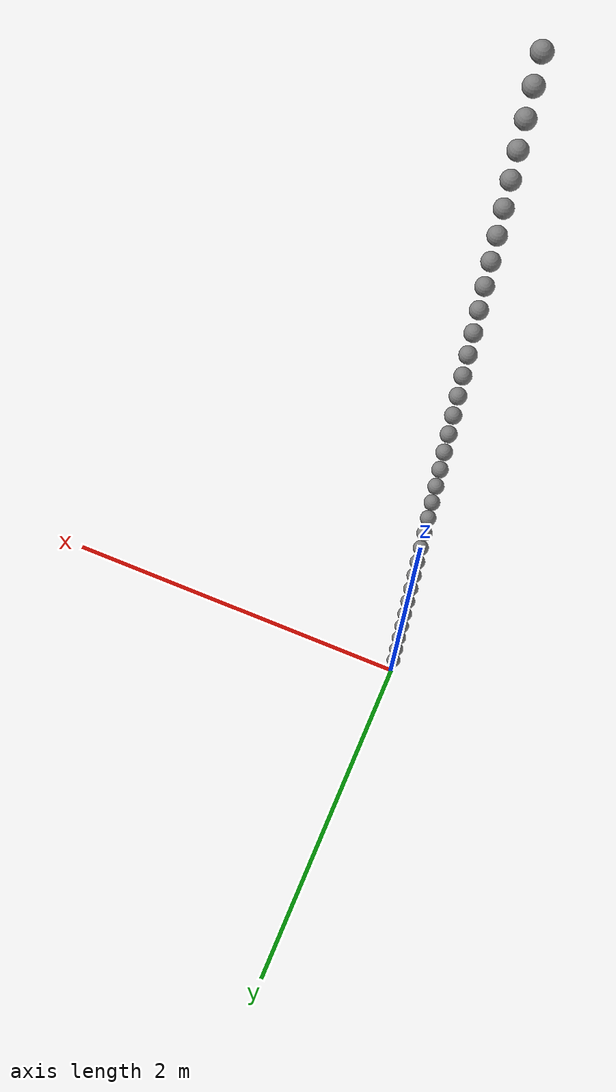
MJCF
<mujoco><option timestep=".002" gravity="0 0 0" jacobian="dense"/><worldbody><body pos="0 0 .2"><joint name="j0"/><geom size=".04" mass="1" contype="0" conaffinity="0"/><body pos="0 0 .2"><joint name="j1"/><geom size=".04" mass="1" contype="0" conaffinity="0"/><body pos="0 0 .2"><joint name="j2"/><geom size=".04" mass="1" contype="0" conaffinity="0"/><body pos="0 0 .2"><joint name="j3"/><geom size=".04" mass="1" contype="0" conaffinity="0"/><body pos="0 0 .2"><joint name="j4"/><geom size=".04" mass="1" contype="0" conaffinity="0"/><body pos="0 0 .2"><joint name="j5"/><geom size=".04" mass="1" contype="0" conaffinity="0"/><body pos="0 0 .2"><joint name="j6"/><geom size=".04" mass="1" contype="0" conaffinity="0"/><body pos="0 0 .2"><joint name="j7"/><geom size=".04" mass="1" contype="0" conaffinity="0"/><body pos="0 0 .2"><joint name="j8"/><geom size=".04" mass="1" contype="0" conaffinity="0"/><body pos="0 0 .2"><joint name="j9"/><geom size=".04" mass="1" contype="0" conaffinity="0"/><body pos="0 0 .2"><joint name="j10"/><geom size=".04" mass="1" contype="0" conaffinity="0"/><body pos="0 0 .2"><joint name="j11"/><geom size=".04" mass="1" contype="0" conaffinity="0"/><body pos="0 0 .2"><joint name="j12"/><geom size=".04" mass="1" contype="0" conaffinity="0"/><body pos="0 0 .2"><joint name="j13"/><geom size=".04" mass="1" contype="0" conaffinity="0"/><body pos="0 0 .2"><joint name="j14"/><geom size=".04" mass="1" contype="0" conaffinity="0"/><body pos="0 0 .2"><joint name="j15"/><geom size=".04" mass="1" contype="0" conaffinity="0"/><body pos="0 0 .2"><joint name="j16"/><geom size=".04" mass="1" contype="0" conaffinity="0"/><body pos="0 0 .2"><joint name="j17"/><geom size=".04" mass="1" contype="0" conaffinity="0"/><body pos="0 0 .2"><joint name="j18"/><geom size=".04" mass="1" contype="0" conaffinity="0"/><body pos="0 0 .2"><joint name="j19"/><geom size=".04" mass="1" contype="0" conaffinity="0"/><body pos="0 0 .2"><joint name="j20"/><geom size=".04" mass="1" contype="0" conaffinity="0"/><body pos="0 0 .2"><joint name="j21"/><geom size=".04" mass="1" contype="0" conaffinity="0"/><body pos="0 0 .2"><joint name="j22"/><geom size=".04" mass="1" contype="0" conaffinity="0"/><body pos="0 0 .2"><joint name="j23"/><geom size=".04" mass="1" contype="0" conaffinity="0"/><body pos="0 0 .2"><joint name="j24"/><geom size=".04" mass="1" contype="0" conaffinity="0"/><body pos="0 0 .2"><joint name="j25"/><geom size=".04" mass="1" contype="0" conaffinity="0"/><body pos="0 0 .2"><joint name="j26"/><geom size=".04" mass="1" contype="0" conaffinity="0"/><body pos="0 0 .2"><joint name="j27"/><geom size=".04" mass="1" contype="0" conaffinity="0"/><body pos="0 0 .2"><joint name="j28"/><geom size=".04" mass="1" contype="0" conaffinity="0"/><body pos="0 0 .2"><joint name="j29"/><geom size=".04" mass="1" contype="0" conaffinity="0"/><body pos="0 0 .2"><joint name="j30"/><geom size=".04" mass="1" contype="0" conaffinity="0"/><body pos="0 0 .2"><joint name="j31"/><geom size=".04" mass="1" contype="0" conaffinity="0"/></body></body></body></body></body></body></body></body></body></body></body></body></body></body></body></body></body></body></body></body></body></body></body></body></body></body></body></body></body></body></body></body></worldbody><actuator><dcmotor joint="j0" motorconst=".2" resistance="2" input="pos vel ff voltage" controller=".5 .8 .2 2 .5 12" cogging=".05 3 .2" inductance="0 .02" thermal="2 10 0 .003 20 20" lugre="30 .1 .2 .3 .1"/><dcmotor joint="j1" motorconst=".2" resistance="2" input="pos vel ff voltage" controller=".5 .8 .2 2 .5 12" cogging=".05 3 .2" inductance="0 .02" thermal="2 10 0 .003 20 20" lugre="30 .1 .2 .3 .1"/><dcmotor joint="j2" motorconst=".2" resistance="2" input="pos vel ff voltage" controller=".5 .8 .2 2 .5 12" cogging=".05 3 .2" inductance="0 .02" thermal="2 10 0 .003 20 20" lugre="30 .1 .2 .3 .1"/><dcmotor joint="j3" motorconst=".2" resistance="2" input="pos vel ff voltage" controller=".5 .8 .2 2 .5 12" cogging=".05 3 .2" inductance="0 .02" thermal="2 10 0 .003 20 20" lugre="30 .1 .2 .3 .1"/><dcmotor joint="j4" motorconst=".2" resistance="2" input="pos vel ff voltage" controller=".5 .8 .2 2 .5 12" cogging=".05 3 .2" inductance="0 .02" thermal="2 10 0 .003 20 20" lugre="30 .1 .2 .3 .1"/><dcmotor joint="j5" motorconst=".2" resistance="2" input="pos vel ff voltage" controller=".5 .8 .2 2 .5 12" cogging=".05 3 .2" inductance="0 .02" thermal="2 10 0 .003 20 20" lugre="30 .1 .2 .3 .1"/><dcmotor joint="j6" motorconst=".2" resistance="2" input="pos vel ff voltage" controller=".5 .8 .2 2 .5 12" cogging=".05 3 .2" inductance="0 .02" thermal="2 10 0 .003 20 20" lugre="30 .1 .2 .3 .1"/><dcmotor joint="j7" motorconst=".2" resistance="2" input="pos vel ff voltage" controller=".5 .8 .2 2 .5 12" cogging=".05 3 .2" inductance="0 .02" thermal="2 10 0 .003 20 20" lugre="30 .1 .2 .3 .1"/><dcmotor joint="j8" motorconst=".2" resistance="2" input="pos vel ff voltage" controller=".5 .8 .2 2 .5 12" cogging=".05 3 .2" inductance="0 .02" thermal="2 10 0 .003 20 20" lugre="30 .1 .2 .3 .1"/><dcmotor joint="j9" motorconst=".2" resistance="2" input="pos vel ff voltage" controller=".5 .8 .2 2 .5 12" cogging=".05 3 .2" inductance="0 .02" thermal="2 10 0 .003 20 20" lugre="30 .1 .2 .3 .1"/><dcmotor joint="j10" motorconst=".2" resistance="2" input="pos vel ff voltage" controller=".5 .8 .2 2 .5 12" cogging=".05 3 .2" inductance="0 .02" thermal="2 10 0 .003 20 20" lugre="30 .1 .2 .3 .1"/><dcmotor joint="j11" motorconst=".2" resistance="2" input="pos vel ff voltage" controller=".5 .8 .2 2 .5 12" cogging=".05 3 .2" inductance="0 .02" thermal="2 10 0 .003 20 20" lugre="30 .1 .2 .3 .1"/><dcmotor joint="j12" motorconst=".2" resistance="2" input="pos vel ff voltage" controller=".5 .8 .2 2 .5 12" cogging=".05 3 .2" inductance="0 .02" thermal="2 10 0 .003 20 20" lugre="30 .1 .2 .3 .1"/><dcmotor joint="j13" motorconst=".2" resistance="2" input="pos vel ff voltage" controller=".5 .8 .2 2 .5 12" cogging=".05 3 .2" inductance="0 .02" thermal="2 10 0 .003 20 20" lugre="30 .1 .2 .3 .1"/><dcmotor joint="j14" motorconst=".2" resistance="2" input="pos vel ff voltage" controller=".5 .8 .2 2 .5 12" cogging=".05 3 .2" inductance="0 .02" thermal="2 10 0 .003 20 20" lugre="30 .1 .2 .3 .1"/><dcmotor joint="j15" motorconst=".2" resistance="2" input="pos vel ff voltage" controller=".5 .8 .2 2 .5 12" cogging=".05 3 .2" inductance="0 .02" thermal="2 10 0 .003 20 20" lugre="30 .1 .2 .3 .1"/><dcmotor joint="j16" motorconst=".2" resistance="2" input="pos vel ff voltage" controller=".5 .8 .2 2 .5 12" cogging=".05 3 .2" inductance="0 .02" thermal="2 10 0 .003 20 20" lugre="30 .1 .2 .3 .1"/><dcmotor joint="j17" motorconst=".2" resistance="2" input="pos vel ff voltage" controller=".5 .8 .2 2 .5 12" cogging=".05 3 .2" inductance="0 .02" thermal="2 10 0 .003 20 20" lugre="30 .1 .2 .3 .1"/><dcmotor joint="j18" motorconst=".2" resistance="2" input="pos vel ff voltage" controller=".5 .8 .2 2 .5 12" cogging=".05 3 .2" inductance="0 .02" thermal="2 10 0 .003 20 20" lugre="30 .1 .2 .3 .1"/><dcmotor joint="j19" motorconst=".2" resistance="2" input="pos vel ff voltage" controller=".5 .8 .2 2 .5 12" cogging=".05 3 .2" inductance="0 .02" thermal="2 10 0 .003 20 20" lugre="30 .1 .2 .3 .1"/><dcmotor joint="j20" motorconst=".2" resistance="2" input="pos vel ff voltage" controller=".5 .8 .2 2 .5 12" cogging=".05 3 .2" inductance="0 .02" thermal="2 10 0 .003 20 20" lugre="30 .1 .2 .3 .1"/><dcmotor joint="j21" motorconst=".2" resistance="2" input="pos vel ff voltage" controller=".5 .8 .2 2 .5 12" cogging=".05 3 .2" inductance="0 .02" thermal="2 10 0 .003 20 20" lugre="30 .1 .2 .3 .1"/><dcmotor joint="j22" motorconst=".2" resistance="2" input="pos vel ff voltage" controller=".5 .8 .2 2 .5 12" cogging=".05 3 .2" inductance="0 .02" thermal="2 10 0 .003 20 20" lugre="30 .1 .2 .3 .1"/><dcmotor joint="j23" motorconst=".2" resistance="2" input="pos vel ff voltage" controller=".5 .8 .2 2 .5 12" cogging=".05 3 .2" inductance="0 .02" thermal="2 10 0 .003 20 20" lugre="30 .1 .2 .3 .1"/><dcmotor joint="j24" motorconst=".2" resistance="2" input="pos vel ff voltage" controller=".5 .8 .2 2 .5 12" cogging=".05 3 .2" inductance="0 .02" thermal="2 10 0 .003 20 20" lugre="30 .1 .2 .3 .1"/><dcmotor joint="j25" motorconst=".2" resistance="2" input="pos vel ff voltage" controller=".5 .8 .2 2 .5 12" cogging=".05 3 .2" inductance="0 .02" thermal="2 10 0 .003 20 20" lugre="30 .1 .2 .3 .1"/><dcmotor joint="j26" motorconst=".2" resistance="2" input="pos vel ff voltage" controller=".5 .8 .2 2 .5 12" cogging=".05 3 .2" inductance="0 .02" thermal="2 10 0 .003 20 20" lugre="30 .1 .2 .3 .1"/><dcmotor joint="j27" motorconst=".2" resistance="2" input="pos vel ff voltage" controller=".5 .8 .2 2 .5 12" cogging=".05 3 .2" inductance="0 .02" thermal="2 10 0 .003 20 20" lugre="30 .1 .2 .3 .1"/><dcmotor joint="j28" motorconst=".2" resistance="2" input="pos vel ff voltage" controller=".5 .8 .2 2 .5 12" cogging=".05 3 .2" inductance="0 .02" thermal="2 10 0 .003 20 20" lugre="30 .1 .2 .3 .1"/><dcmotor joint="j29" motorconst=".2" resistance="2" input="pos vel ff voltage" controller=".5 .8 .2 2 .5 12" cogging=".05 3 .2" inductance="0 .02" thermal="2 10 0 .003 20 20" lugre="30 .1 .2 .3 .1"/><dcmotor joint="j30" motorconst=".2" resistance="2" input="pos vel ff voltage" controller=".5 .8 .2 2 .5 12" cogging=".05 3 .2" inductance="0 .02" thermal="2 10 0 .003 20 20" lugre="30 .1 .2 .3 .1"/><dcmotor joint="j31" motorconst=".2" resistance="2" input="pos vel ff voltage" controller=".5 .8 .2 2 .5 12" cogging=".05 3 .2" inductance="0 .02" thermal="2 10 0 .003 20 20" lugre="30 .1 .2 .3 .1"/></actuator></mujoco>
